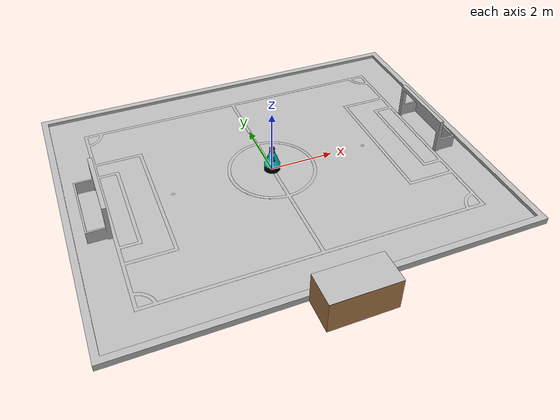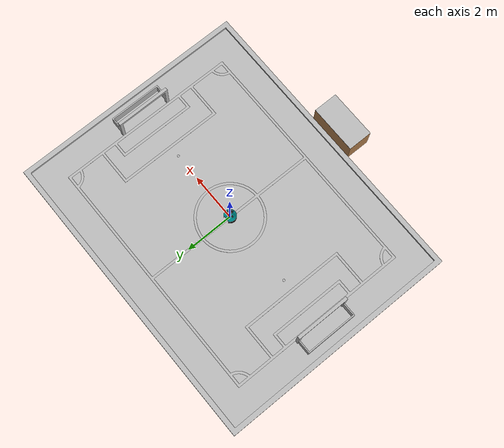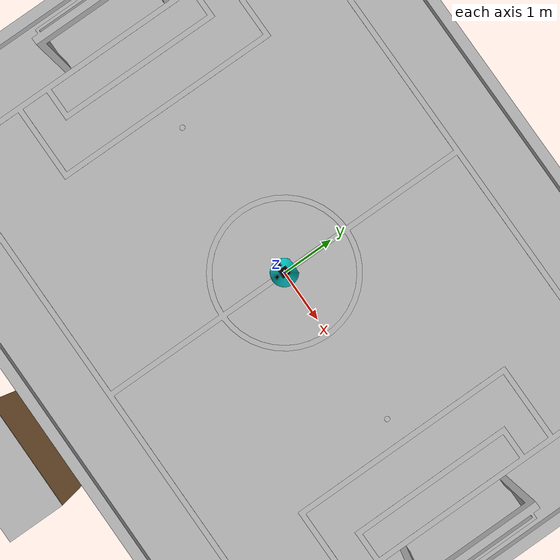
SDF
<?xml version="1.0" ?>
<sdf version="1.5">
  <world name="default">
    <!-- A global light source -->
    <include>
      <uri>model://sun</uri>
    </include>
    <!-- Game field, including ref box table
    for reference, the two goalies, line markings
    and stoppers. -->

     <physics type='ode'>
      <max_step_size>0.03125</max_step_size>
      <real_time_update_rate>32</real_time_update_rate>
      <gravity>0 0 -9.8</gravity>
    </physics>

    <include>
      <uri>model://msl_lar_field</uri>
    </include>
    <!-- Game ball, placed in the center of the
    field. -->
    <include>
      <uri>model://msl_yellow_ball</uri>
    </include>

    <!-- Testing robot-->
    <include>
      <uri>model://minhoteam_msl_robot</uri>
      <name>minho_robot_1</name>
    </include>

    <plugin filename="libminho_world.so" name="minho_world">
        <model model_id="0">model://msl_yellow_ball</model>
        <model model_id="1">model://minhoteam_msl_robot</model>
        <model model_id="2">model://other_msl_robot</model>
    </plugin>
  </world>
</sdf>

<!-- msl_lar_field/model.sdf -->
<sdf version="1.5">
  <model name="RoboCup MSL Field - Lar">
   <pose>-6.3 -4.97 -0.1 0 0 0</pose>
   <static>true</static>

    <link name="field">
      <collision name="field_collision">
        <geometry>
          <mesh>
             <scale>1 1 1</scale>
             <uri>model://msl_lar_field/meshes/collision.STL</uri>
          </mesh>
        </geometry>
        <surface>
            <bounce>
              <restitution_coefficient>0.8</restitution_coefficient>
              <threshold>0.01</threshold>
            </bounce>
            <friction>
              <ode>
                <mu>100</mu>
                <mu2>50</mu2>
              </ode>
            </friction>
          </surface>
      </collision>
      <collision name="base_collision">
      <pose>6.3 4.97 -0.25 0 0 0</pose>
        <geometry>
          <box>
            <size>12.6 9.94 0.5</size>
          </box>
        </geometry>
        <surface>
            <bounce>
              <restitution_coefficient>0.8</restitution_coefficient>
              <threshold>0.01</threshold>
            </bounce>
            <friction>
              <ode>
                <mu>100</mu>
                <mu2>50</mu2>
              </ode>
            </friction>
          </surface>
      </collision>
      <visual name="field_visual">
        <pose>6.3 4.97 0.05 0 0 0</pose>
        <geometry>
          <box>
            <size>12.2 9.54 0.1</size>
          </box>
        </geometry>
         <material>
          <script>
            <uri>model://msl_lar_field/materials/scripts/</uri>
            <uri>model://msl_lar_field/materials/textures/</uri>
            <name>RoboCupField/Field</name>
          </script>
        </material>
      </visual>

      <visual name="lines_visual">
        <geometry>
          <mesh>
             <scale>1 1 1</scale>
             <uri>model://msl_lar_field/meshes/lines.STL</uri>
          </mesh>
        </geometry>
         <material>
          <script>
            <uri>model://msl_lar_field/materials/scripts/</uri>
            <uri>model://msl_lar_field/materials/textures/</uri>
            <name>RoboCupField/Line</name>
          </script>
        </material>
      </visual>

      <visual name="border_visual">
        <geometry>
          <mesh>
             <scale>1 1 1</scale>
             <uri>model://msl_lar_field/meshes/border.STL</uri>
          </mesh>
        </geometry>
         <material>
          <script>
            <uri>model://msl_lar_field/materials/scripts/</uri>
            <uri>model://msl_lar_field/materials/textures/</uri>
            <name>RoboCupField/Border</name>
          </script>
        </material>
      </visual>

      <visual name="refbox_visual">
      <pose>6.3 -0.5 0.5 0 0 0</pose>
        <geometry>
          <box>
            <size>2 1 1</size>
          </box>
        </geometry>
         <material>
          <script>
            <uri>model://msl_lar_field/materials/scripts/</uri>
            <uri>model://msl_lar_field/materials/textures/</uri>
            <name>RoboCupField/Wood</name>
          </script>
        </material>
      </visual>

      <visual name="banner_visual">
      <pose>6.3 -0.5 1.005 0 0 0</pose>
        <geometry>
          <box>
            <size>2 1 0.01</size>
          </box>
        </geometry>
         <material>
          <script>
            <uri>model://msl_lar_field/materials/scripts/</uri>
            <uri>model://msl_lar_field/materials/textures/</uri>
            <name>RoboCupField/LarRefBox</name>
          </script>
        </material>
      </visual>

      <visual name="goals_visual">
      <pose>0 0 0 0 0 0</pose>
        <geometry>
          <mesh>
             <scale>1 1 1</scale>
             <uri>model://msl_lar_field/meshes/goals.STL</uri>
          </mesh>
        </geometry>
         <material>
          <script>
            <uri>model://msl_lar_field/materials/scripts/</uri>
            <uri>model://msl_lar_field/materials/textures/</uri>
            <name>RoboCupField/Goal</name>
          </script>
        </material>
      </visual>

      <!--- NETS LEFT --->

      <!--- NETS RIGHT --->
  </link>

  </model>
</sdf>

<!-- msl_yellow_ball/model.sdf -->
<sdf version="1.5">
  <model name="RoboCup MSL Ball">
   <pose>0 0 0.115 0 3.14 0</pose>
    <static>false</static>
    <link name="ball">
        <inertial>
          <mass>0.41</mass>
          <inertia>
            <ixx>3.2e-03</ixx>
            <iyy>3.2e-03</iyy>
            <izz>3.2e-03</izz>
            <ixy>0</ixy>
            <ixz>0</ixz>
            <iyz>0</iyz>
          </inertia>
        </inertial>
      <collision name="collision">
        <geometry>
          <sphere>
            <radius>0.11</radius>
          </sphere>
        </geometry>
        <surface>
            <bounce>
              <restitution_coefficient>0.8</restitution_coefficient>
              <threshold>0.01</threshold>
            </bounce>
            <friction>
              <ode>
                <mu>0.1</mu>
                <mu2>0.1</mu2>
              </ode>
            </friction>
            <contact>
              <ode>
                <max_vel>30</max_vel>
              </ode>
            </contact>
          </surface>
      </collision>
      <visual name="visual">
        <geometry>
            <sphere>
            <radius>0.11</radius>
          </sphere>
         </geometry>
         <material>
          <script>
            <uri>model://msl_yellow_ball/materials/scripts/</uri>
            <uri>model://msl_yellow_ball/materials/textures/</uri>
            <name>RoboCupBall/Yellow</name>
          </script>
        </material>
      </visual>

      <velocity_decay>
        <linear>0.00001</linear>
        <angular>0.0005</angular>
      </velocity_decay>
      <self_collide>false</self_collide>
      <gravity>true</gravity>
    </link>
  </model>
</sdf>

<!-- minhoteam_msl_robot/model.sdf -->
<sdf version="1.5">
  <model name="minho_robot">
    <static>false</static>
    <link name="base">
       <pose>0 0 0.01 0 0 1.57</pose>
        <inertial>
        <mass>31</mass>
            <inertia>
               <ixx>100</ixx>
               <ixy>0</ixy>
               <ixz>0</ixz>
               <iyy>100</iyy>
               <iyz>0</iyz>
               <izz>2.86</izz>
           </inertia>
        </inertial>
      <collision name="collision_base">
        <geometry>
          <mesh>
            <scale>1 1 1</scale>
            <uri>model://minhoteam_msl_robot/meshes/base.stl</uri>
          </mesh>
        </geometry>
        <surface>
          <bounce>
            <restitution_coefficient>0</restitution_coefficient>
          </bounce>
          <friction>
              <ode>
                <mu>0.1</mu>
                <mu2>0.1</mu2>
              </ode>
          </friction>
        </surface>
      </collision>
      <visual name="visual_base">
        <geometry>
          <mesh>
            <scale>1 1 1</scale>
            <uri>model://minhoteam_msl_robot/meshes/base.stl</uri>
          </mesh>
        </geometry>
        <material>
            <ambient>0.02 0.02 0.02 1.0</ambient>
            <diffuse>0.01 0.01 0.01 1.0</diffuse>
            <specular>0.4 0.4 0.4 1.0</specular>
        </material>
      </visual>
      <self_collide>true</self_collide>
      <gravity>true</gravity>
    </link>

    <link name="mid">
       <pose>0 0 0.008 0 0 1.57</pose>
      <collision name="collision_middle">
        <geometry>
          <mesh>
            <scale>1 1 1</scale>
            <uri>model://minhoteam_msl_robot/meshes/mid.stl</uri>
          </mesh>
        </geometry>
      </collision>
      <visual name="visual_middle">
        <geometry>
          <mesh>
            <scale>1 1 1</scale>
            <uri>model://minhoteam_msl_robot/meshes/mid.stl</uri>
          </mesh>
        </geometry>
            <material>
                <!-- CYAN -->
                <ambient>0.0 0.1 0.6 1.0</ambient>
                <diffuse>0.0 0.8 0.8 1.0</diffuse>
                <specular>0.5 0.5 0.5 1.0</specular>
            </material>
      </visual>
    <self_collide>true</self_collide>
    <gravity>true</gravity>
    </link>

    <link name="head">
      <collision name="collision_head">
      <pose>0 0 0.73 0 0 1.57</pose>
        <geometry>
          <box>
            <size>0.15 0.15 0.15</size>
          </box>
        </geometry>
      </collision>
      <visual name="visual_head">
      <pose>0 0 0.01 0 0 1.57</pose>
        <geometry>
          <mesh>
            <scale>1 1 1</scale>
            <uri>model://minhoteam_msl_robot/meshes/head.stl</uri>
          </mesh>
        </geometry>
        <material>
            <ambient>0.0 0.0 0.0 1.0</ambient>
            <diffuse>0.01 0.01 0.01 1.0</diffuse>
            <specular>0.5 0.5 0.5 1.0</specular>
        </material>
      </visual>
    <self_collide>true</self_collide>
      <gravity>true</gravity>
    </link>

    <link name="numberings">
    <pose>0 0 0.008 0 0 1.57</pose>
     <visual name="numbering_back">
      <pose>-0.172 0 0.4 1.21 0 -1.57</pose>
        <cast_shadows>false</cast_shadows>
        <geometry>
          <mesh>
            <scale>0.3 0.3 0.3</scale>
            <uri>model://minhoteam_msl_robot/meshes/nr_1.stl</uri>
          </mesh>
        </geometry>
        <material>
            <ambient>0.02 0.02 0.02 1.0</ambient>
            <diffuse>0.01 0.01 0.01 1.0</diffuse>
            <specular>0.4 0.4 0.4 1.0</specular>
        </material>
      </visual>
      <visual name="numbering_right">
      <pose>0 -0.172 0.4 1.21 0 0</pose>
        <cast_shadows>false</cast_shadows>
        <geometry>
          <mesh>
            <scale>0.3 0.3 0.3</scale>
            <uri>model://minhoteam_msl_robot/meshes/nr_1.stl</uri>
          </mesh>
        </geometry>
        <material>
            <ambient>0.02 0.02 0.02 1.0</ambient>
            <diffuse>0.01 0.01 0.01 1.0</diffuse>
            <specular>0.4 0.4 0.4 1.0</specular>
        </material>
      </visual>
      <visual name="numbering_left">
      <pose>0 0.172 0.4 1.21 0 3.14</pose>
        <cast_shadows>false</cast_shadows>
        <geometry>
          <mesh>
            <scale>0.3 0.3 0.3</scale>
            <uri>model://minhoteam_msl_robot/meshes/nr_1.stl</uri>
          </mesh>
        </geometry>
        <material>
            <ambient>0.02 0.02 0.02 1.0</ambient>
            <diffuse>0.01 0.01 0.01 1.0</diffuse>
            <specular>0.4 0.4 0.4 1.0</specular>
        </material>
      </visual>
    </link>

    <joint type="fixed" name="base_mid">
        <pose>0 0 0.2 0 0 0</pose>
        <child>mid</child>
        <parent>base</parent>
        <axis>
          <xyz>0 0 1</xyz>
        </axis>
    </joint>

    <joint type="fixed" name="mid_head">
        <pose>0 0 0.5 0 0 0</pose>
        <child>head</child>
        <parent>mid</parent>
        <axis>
          <xyz>0 0 1</xyz>
        </axis>
    </joint>

    <joint type="fixed" name="numbers">
        <pose>0 0 0.2 0 0 0</pose>
        <child>mid</child>
        <parent>numberings</parent>
        <axis>
          <xyz>1 1 1</xyz>
        </axis>
    </joint>

    <!-- Fake LIDAR for obstacle detection -->

    <!-- HARDWARE/WORLDMODEL PLUGIN -->
    <plugin filename="libminho_robot.so" name="minho_robot">
               <!-- ROBOT PARAMETERS -->
        <max_linear_velocity>2.5</max_linear_velocity>
        <max_angular_velocity>15.0</max_angular_velocity>
        <max_ball_velocity>8.0</max_ball_velocity>
        <ball_kick_angle>45.0</ball_kick_angle>
        <ball_model_name>RoboCup MSL Ball</ball_model_name>
        <vision_range_radius>6.0</vision_range_radius>
        <max_backwards_grip_vel>30</max_backwards_grip_vel>
        <max_rotation_grip_vel>30</max_rotation_grip_vel>
        <grip_decay>24</grip_decay>
               <!-- ROS NODE BOOT -->
        <ros_boot>
            <!-- COMS_NODE-->
            <node>
               <package>minho_team_ros</package>
               <name>coms_node</name>
               <flags>
                  <flag>-s</flag>
                  <flag>$ID</flag>
               </flags>
            </node>
            <!-- CONTROL_NODE -->
            <node>
               <package>minho_team_ros</package>
               <name>control_node</name>
               <flags>
                  <flag>-s</flag>
                  <flag>$ID</flag>
               </flags>
            </node>
            <!-- AI_NODE-->
            <node>
               <package>minho_team_ros</package>
               <name>ai_node</name>
               <flags>
                  <flag>-s</flag>
                  <flag>$ID</flag>
               </flags>
            </node>

        </ros_boot>
    </plugin>

  </model>
</sdf>
